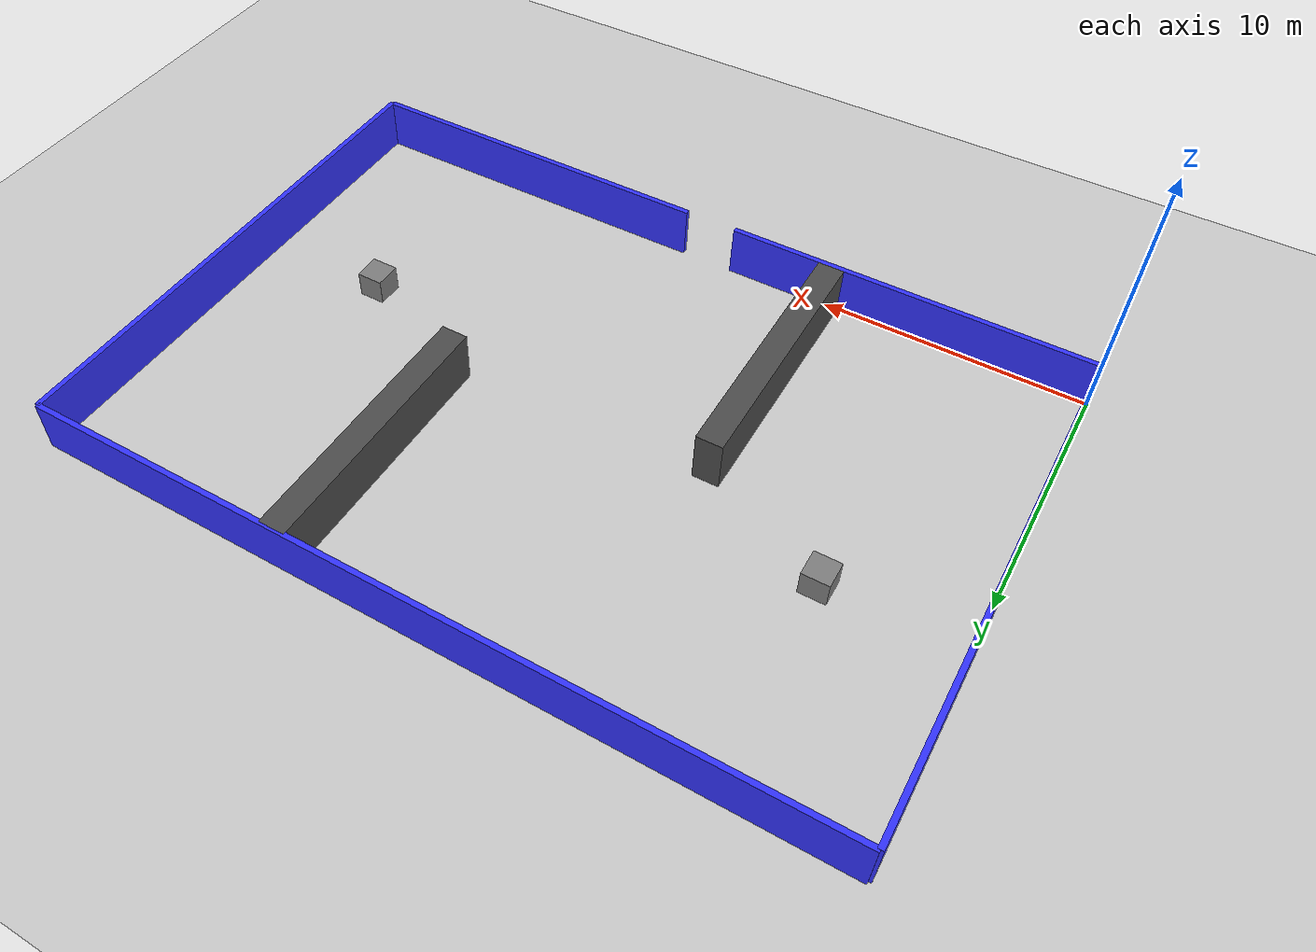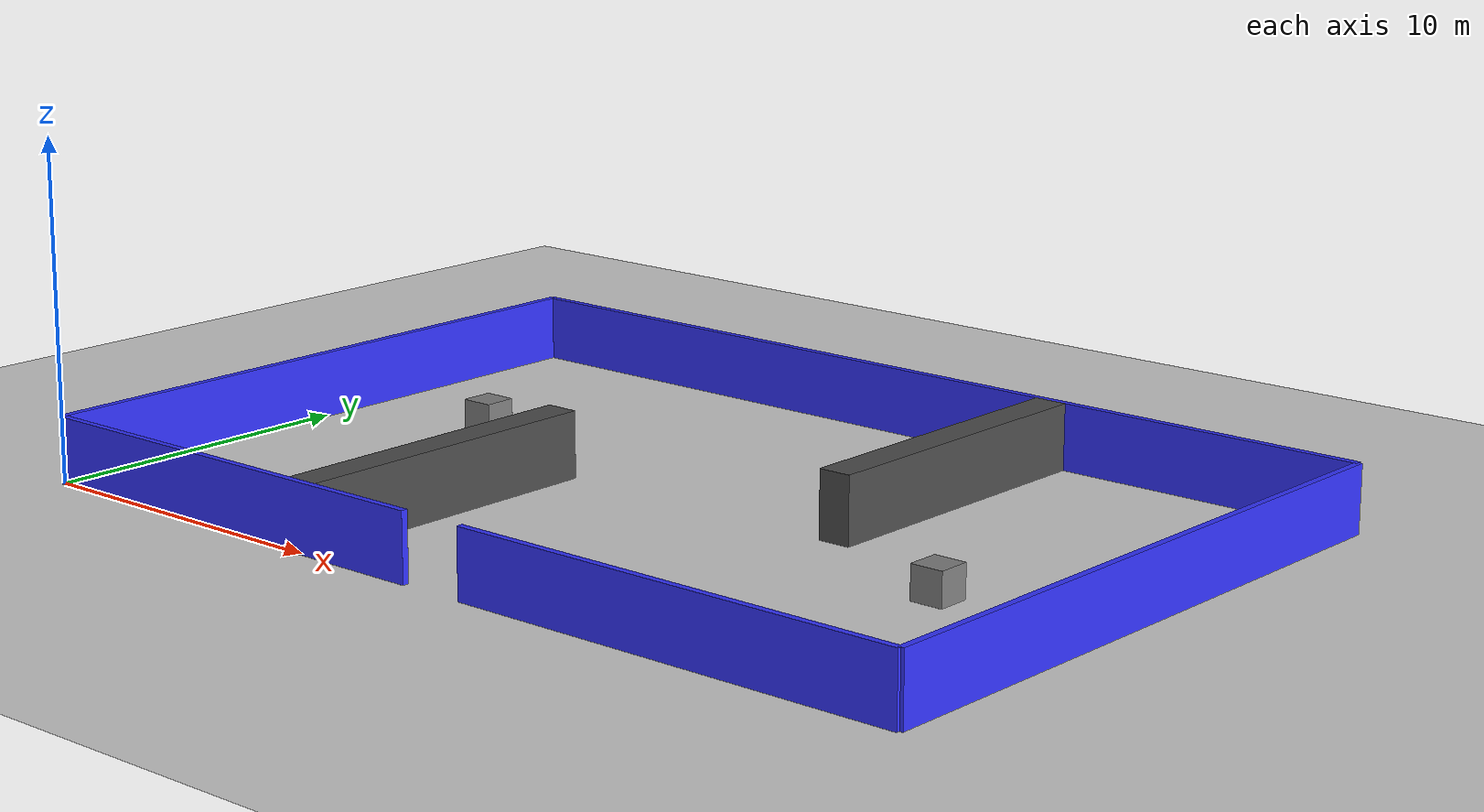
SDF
<?xml version="1.0" ?>
<sdf version="1.8">
  <world name="warehouse_world">
    <physics name="1ms" type="ignored">
      <max_step_size>0.001</max_step_size>
      <real_time_factor>1.0</real_time_factor>
    </physics>

    <plugin filename="gz-sim-physics-system" name="gz::sim::systems::Physics"/>
    <plugin filename="gz-sim-user-commands-system" name="gz::sim::systems::UserCommands"/>
    <plugin filename="gz-sim-scene-broadcaster-system" name="gz::sim::systems::SceneBroadcaster"/>
    <plugin filename="gz-sim-sensors-system" name="gz::sim::systems::Sensors">
      <render_engine>ogre</render_engine>
    </plugin>

    <include><uri>https://fuel.gazebosim.org/1.0/openrobotics/models/Sun</uri></include>
    <include><uri>https://fuel.gazebosim.org/1.0/openrobotics/models/Ground Plane</uri></include>

    <model name="wall_back"><static>true</static><pose>15 20 1 0 0 0</pose>
      <link name="l"><collision name="c"><geometry><box><size>30 0.2 2</size></box></geometry></collision>
      <visual name="v"><geometry><box><size>30 0.2 2</size></box></geometry>
        <material>
          <ambient>0.2 0.2 1.0 1</ambient>
          <diffuse>0.2 0.2 1.0 1</diffuse>
        </material>
      </visual></link>
    </model>

    <model name="wall_front_left"><static>true</static><pose>7 0 1 0 0 0</pose>
      <link name="l"><collision name="c"><geometry><box><size>14 0.2 2</size></box></geometry></collision>
      <visual name="v"><geometry><box><size>14 0.2 2</size></box></geometry>
        <material>
          <ambient>0.2 0.2 1.0 1</ambient>
          <diffuse>0.2 0.2 1.0 1</diffuse>
        </material>
      </visual></link>
    </model>

    <model name="wall_front_right"><static>true</static><pose>23 0 1 0 0 0</pose>
      <link name="l"><collision name="c"><geometry><box><size>14 0.2 2</size></box></geometry></collision>
      <visual name="v"><geometry><box><size>14 0.2 2</size></box></geometry>
        <material>
          <ambient>0.2 0.2 1.0 1</ambient>
          <diffuse>0.2 0.2 1.0 1</diffuse>
        </material>
      </visual></link>
    </model>

    <model name="wall_left"><static>true</static><pose>0 10 1 0 0 0</pose>
      <link name="l"><collision name="c"><geometry><box><size>0.2 20 2</size></box></geometry></collision>
      <visual name="v"><geometry><box><size>0.2 20 2</size></box></geometry>
        <material>
          <ambient>0.2 0.2 1.0 1</ambient>
          <diffuse>0.2 0.2 1.0 1</diffuse>
        </material>
      </visual></link>
    </model>

    <model name="wall_right"><static>true</static><pose>30 10 1 0 0 0</pose>
      <link name="l"><collision name="c"><geometry><box><size>0.2 20 2</size></box></geometry></collision>
      <visual name="v"><geometry><box><size>0.2 20 2</size></box></geometry>
        <material>
          <ambient>0.2 0.2 1.0 1</ambient>
          <diffuse>0.2 0.2 1.0 1</diffuse>
        </material>
      </visual></link>
    </model>

    <model name="aisle_1"><static>true</static><pose>10 5 1 0 0 0</pose>
      <link name="l"><collision name="c"><geometry><box><size>1 10 2</size></box></geometry></collision>
      <visual name="v"><geometry><box><size>1 10 2</size></box></geometry>
        <material>
          <ambient>0.3 0.3 0.3 1</ambient>
          <diffuse>0.3 0.3 0.3 1</diffuse>
        </material>
      </visual></link>
    </model>

    <model name="aisle_2"><static>true</static><pose>20 15 1 0 0 0</pose>
      <link name="l"><collision name="c"><geometry><box><size>1 10 2</size></box></geometry></collision>
      <visual name="v"><geometry><box><size>1 10 2</size></box></geometry>
        <material>
          <ambient>0.3 0.3 0.3 1</ambient>
          <diffuse>0.3 0.3 0.3 1</diffuse>
        </material>
      </visual></link>
    </model>

    <model name="box_1"><static>true</static><pose>5 12 0.5 0 0 0</pose>
      <link name="l"><collision name="c"><geometry><box><size>1 1 1</size></box></geometry></collision>
      <visual name="v"><geometry><box><size>1 1 1</size></box></geometry>
        <material>
          <ambient>0.5 0.5 0.5 1</ambient>
          <diffuse>0.5 0.5 0.5 1</diffuse>
        </material>
      </visual></link>
    </model>

    <model name="box_2"><static>true</static><pose>25 8 0.5 0 0 0</pose>
      <link name="l"><collision name="c"><geometry><box><size>1 1 1</size></box></geometry></collision>
      <visual name="v"><geometry><box><size>1 1 1</size></box></geometry>
        <material>
          <ambient>0.5 0.5 0.5 1</ambient>
          <diffuse>0.5 0.5 0.5 1</diffuse>
        </material>
      </visual></link>
    </model>

  </world>
</sdf>
